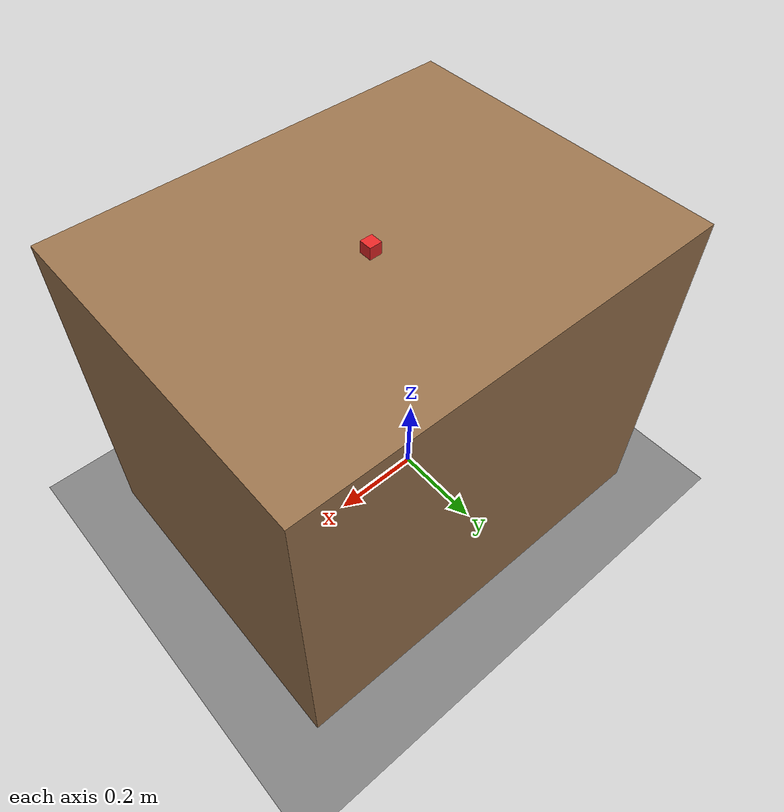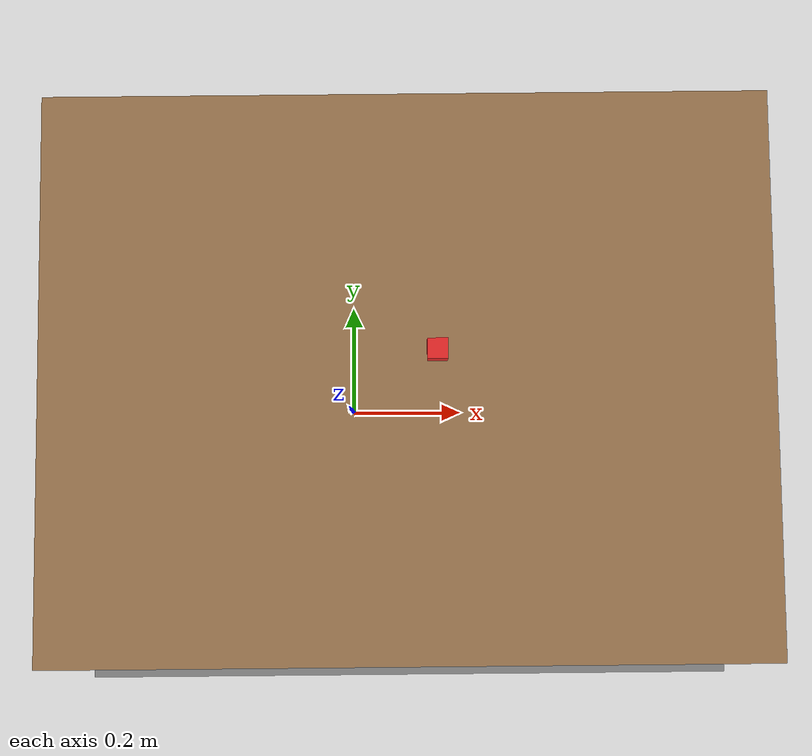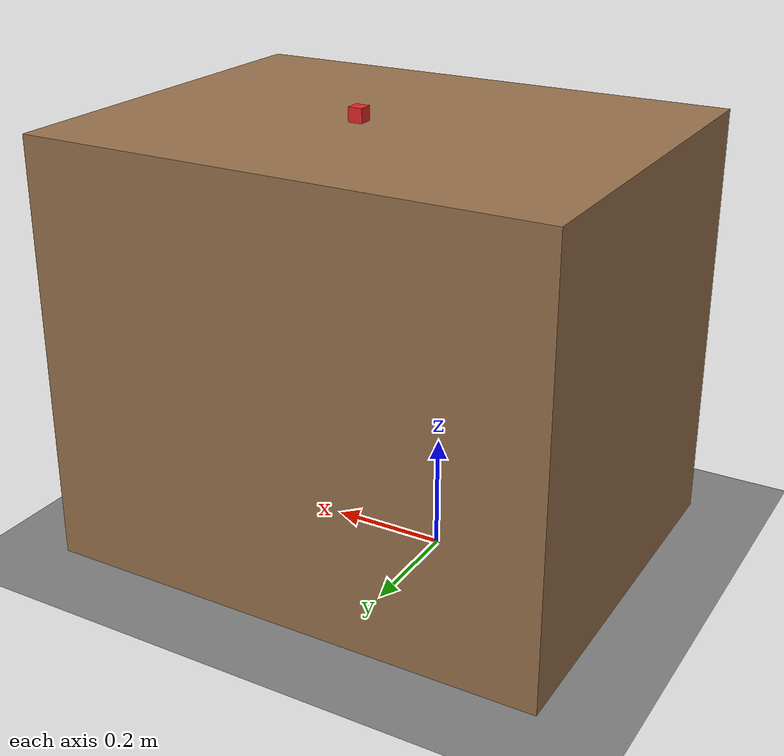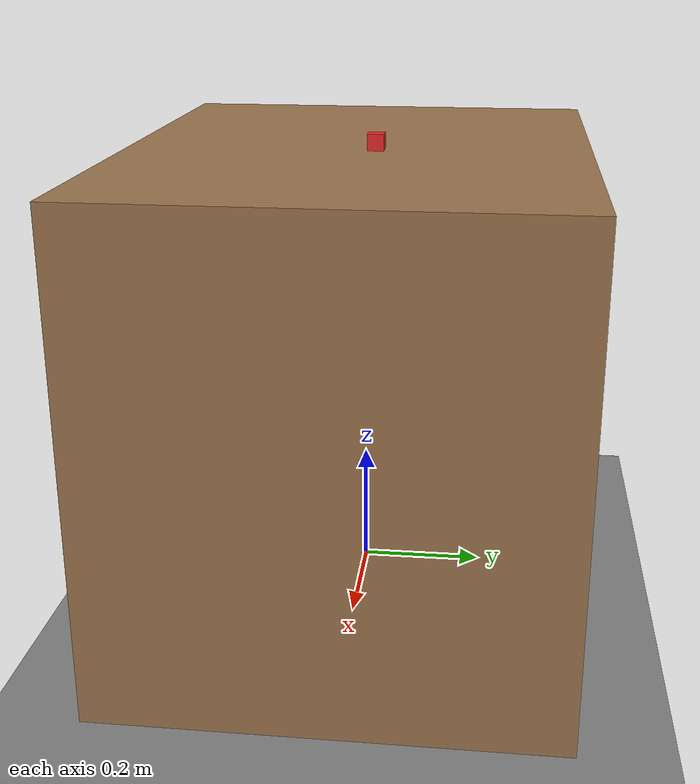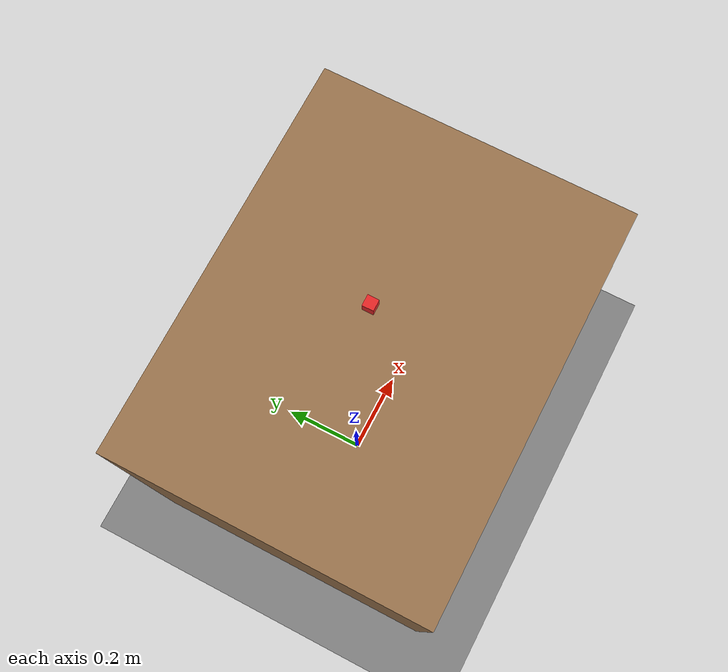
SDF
<?xml version="1.0"?>
<!--
【讲解】流程 2 的仿真世界：与 theWorld.sdf 相同，只改了两处 —— 世界名 grasp_world2、方块初始位置 = grasp2.yaml 的 point_a。
-->
<!--
  抓取实验场景：地面 + 桌子 + 目标物。
  机械臂由 launch 文件用 ros_gz_sim 的 create 动态生成（放在桌面上），
  这样机器人模型只维护一份 URDF，不用在 SDF 里重复。
  坐标约定：桌面高 0.75m；取物点 A / 放置点 B 的世界坐标写在
  grasp_params.yaml 里，物体初始位姿必须与 A 点一致。
-->
<sdf version="1.8">
  <world name="grasp_world2">
    <physics name="default" type="ignored">
      <max_step_size>0.004</max_step_size>
      <real_time_factor>1.0</real_time_factor>
    </physics>
    <plugin filename="libignition-gazebo-physics-system.so" name="ignition::gazebo::systems::Physics"/>
    <plugin filename="libignition-gazebo-scene-broadcaster-system.so" name="ignition::gazebo::systems::SceneBroadcaster"/>
    <plugin filename="libignition-gazebo-user-commands-system.so" name="ignition::gazebo::systems::UserCommands"/>

    <light type="directional" name="sun">
      <cast_shadows>false</cast_shadows>
      <pose>0 0 10 0 0 0</pose>
      <diffuse>0.9 0.9 0.9 1</diffuse>
      <direction>-0.3 0.2 -0.9</direction>
    </light>

    <model name="ground">
      <static>true</static>
      <link name="ground_link">
        <collision name="c"><geometry><plane><normal>0 0 1</normal><size>10 10</size></plane></geometry></collision>
        <visual name="v"><geometry><plane><normal>0 0 1</normal><size>10 10</size></plane></geometry>
          <material><ambient>0.5 0.5 0.5 1</ambient><diffuse>0.5 0.5 0.5 1</diffuse></material>
        </visual>
      </link>
    </model>

    <!-- 桌子：实心方块，桌面高 0.75m -->
    <model name="table">
      <static>true</static>
      <pose>0.1 0 0.375 0 0 0</pose>
      <link name="table_link">
        <collision name="c"><geometry><box><size>0.9 0.7 0.75</size></box></geometry></collision>
        <visual name="v"><geometry><box><size>0.9 0.7 0.75</size></box></geometry>
          <material><ambient>0.6 0.45 0.3 1</ambient><diffuse>0.6 0.45 0.3 1</diffuse></material>
        </visual>
      </link>
    </model>

    <!-- 目标物：25mm 方块 50g（要求 ≤100g），初始位姿 = 取物点 A。
         纯物理抓取：靠手指接触力 + 高摩擦把它夹起，无任何吸附。
         OdometryPublisher 仅用于结果判定（读位姿真值）。 -->
    <model name="target_object">
      <pose>0.137 0.029 0.7635 0 0 0</pose>
      <plugin filename="libignition-gazebo-odometry-publisher-system.so" name="ignition::gazebo::systems::OdometryPublisher">
        <odom_publish_frequency>30</odom_publish_frequency>
      </plugin>
      <link name="body">
        <inertial>
          <mass>0.05</mass>
          <inertia><ixx>5.2e-6</ixx><iyy>5.2e-6</iyy><izz>5.2e-6</izz><ixy>0</ixy><ixz>0</ixz><iyz>0</iyz></inertia>
        </inertial>
        <collision name="c">
          <geometry><box><size>0.025 0.025 0.025</size></box></geometry>
          <surface><friction><ode><mu>2.0</mu><mu2>2.0</mu2></ode></friction></surface>
        </collision>
        <visual name="v"><geometry><box><size>0.025 0.025 0.025</size></box></geometry>
          <material><ambient>0.9 0.15 0.15 1</ambient><diffuse>0.9 0.15 0.15 1</diffuse></material>
        </visual>
      </link>
    </model>
  </world>
</sdf>
